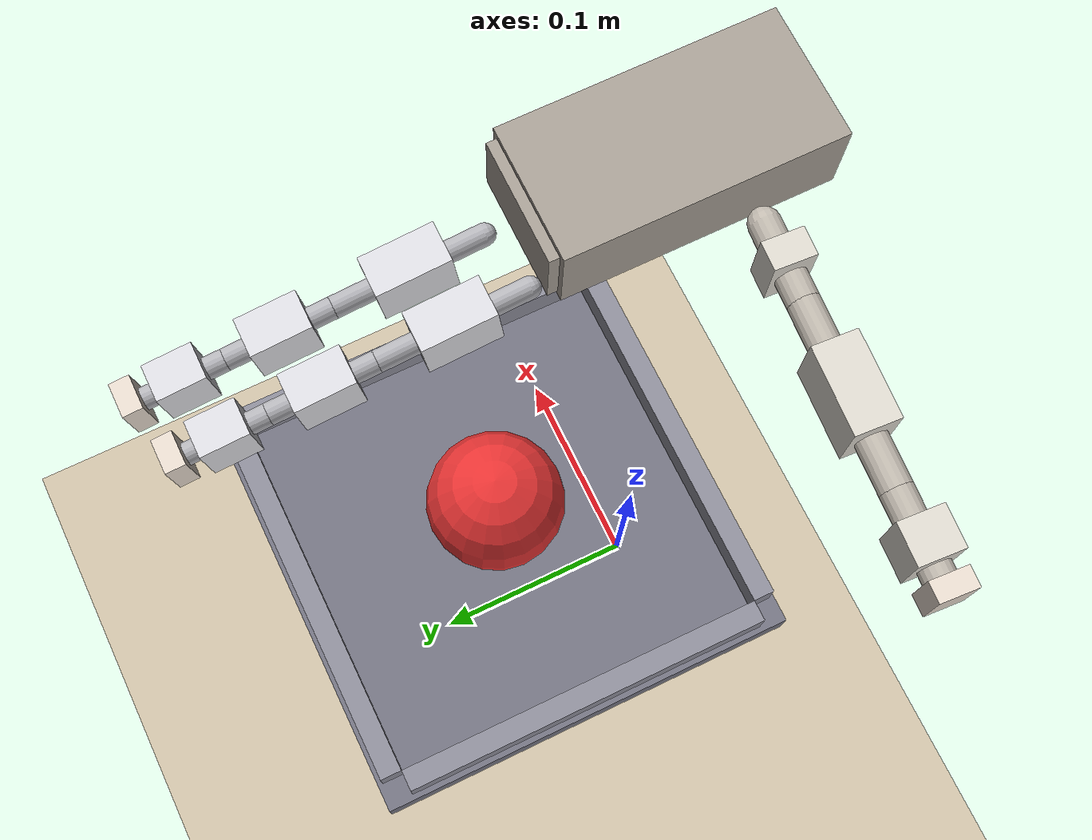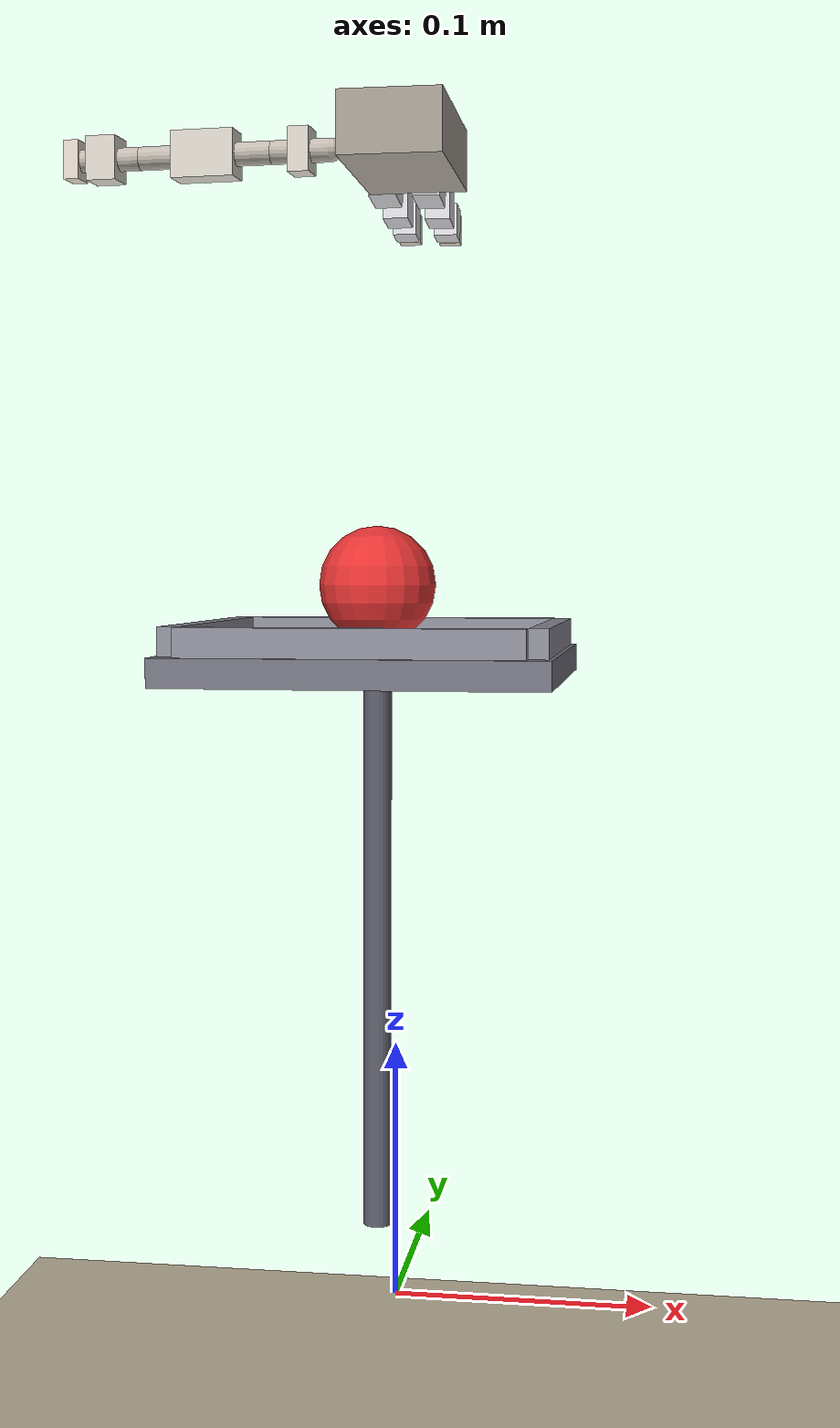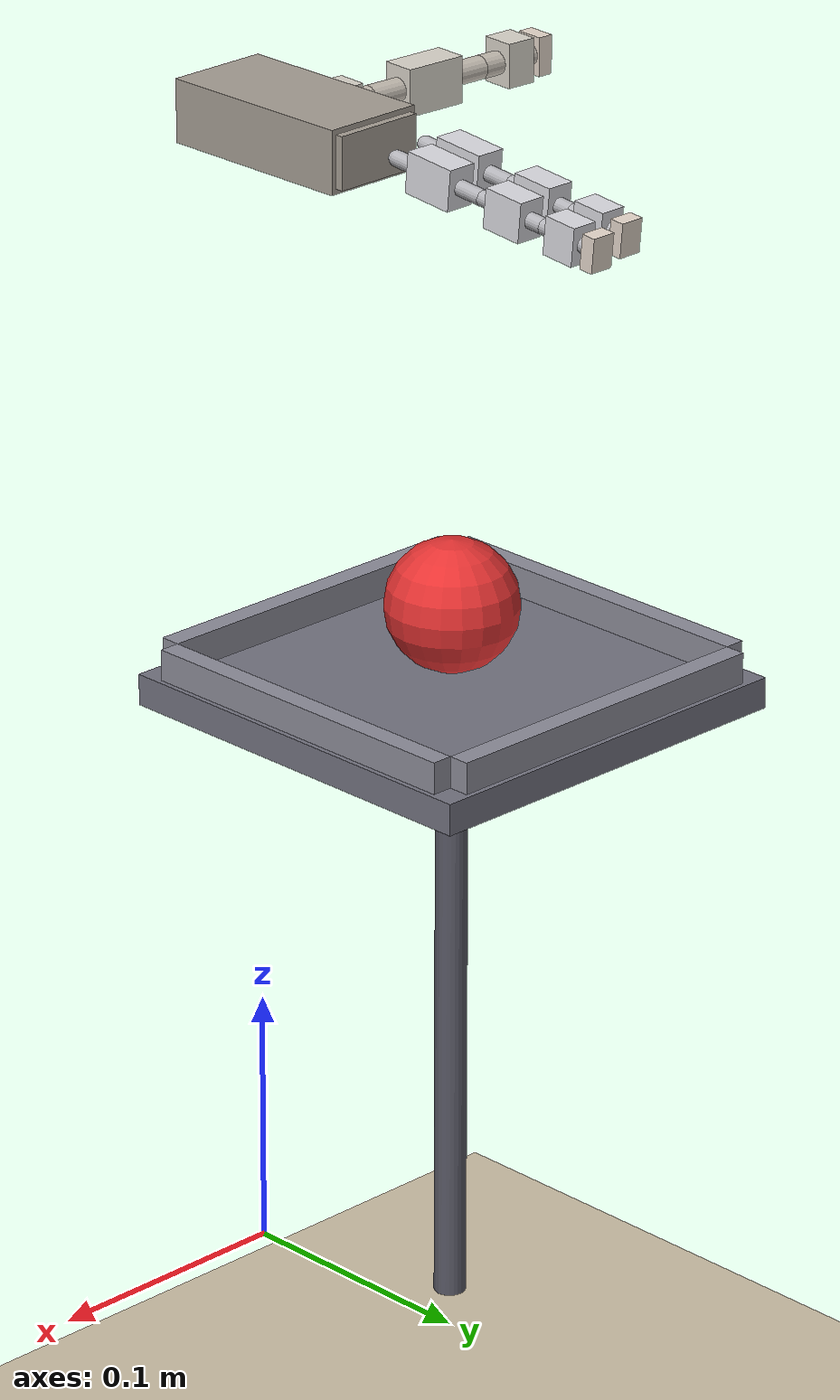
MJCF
<mujoco model="jodell_grasp_scene">

  <compiler angle="radian" eulerseq="xyz"/>
  <option timestep="0.002" gravity="0 0 -9.81" integrator="implicit"/>

  <!-- 引入机器人本体 -->
  <include file="jack_hand_3f_robot.xml"/>

  <!-- ==================== 场景资产 ==================== -->
  <asset>
    <texture name="grid" type="2d" builtin="checker" width="512" height="512"
             rgb1="0.3 0.3 0.35" rgb2="0.35 0.35 0.4"/>
    <material name="grid_mat" texture="grid" texrepeat="8 8"/>
  </asset>

  <!-- ==================== 场景物体 ==================== -->
  <worldbody>
    <!-- 地面 -->
    <geom name="floor" type="plane" size="0.5 0.5 0.01"
          material="grid_mat" pos="0 0 -0.1"/>

    <!-- 灯光 -->
    <light pos="0.3 0.3 0.5" dir="-0.3 -0.3 -0.5" diffuse="0.8 0.8 0.8"/>
    <light pos="-0.3 0.3 0.5" dir="0.3 -0.3 -0.5" diffuse="0.4 0.4 0.4"/>

    <!-- 物体放置台 -->
    <geom name="table_top" type="box" size="0.08 0.08 0.006"
          pos="-0.02 0.08 0.244" rgba="0.45 0.45 0.5 1"
          friction="1.0 0.005 0.001"/>

    <geom name="tray_wall_px" type="box" size="0.004 0.070 0.006"
          pos="0.054 0.08 0.256" rgba="0.55 0.55 0.60 0.9"
          friction="1.0 0.005 0.001"/>
    <geom name="tray_wall_nx" type="box" size="0.004 0.070 0.006"
          pos="-0.094 0.08 0.256" rgba="0.55 0.55 0.60 0.9"
          friction="1.0 0.005 0.001"/>
    <geom name="tray_wall_py" type="box" size="0.070 0.004 0.006"
          pos="-0.02 0.154 0.256" rgba="0.55 0.55 0.60 0.9"
          friction="1.0 0.005 0.001"/>
    <geom name="tray_wall_ny" type="box" size="0.070 0.004 0.006"
          pos="-0.02 0.006 0.256" rgba="0.55 0.55 0.60 0.9"
          friction="1.0 0.005 0.001"/>
    <geom name="table_leg" type="cylinder" size="0.006 0.12"
          pos="-0.02 0.08 0.12" rgba="0.35 0.35 0.4 1"/>

    <!-- 抓取目标物体 -->
    <body name="target_object" pos="-0.02 0.08 0.278">
      <freejoint name="obj_free"/>
      <inertial pos="0 0 0" mass="0.05"
                diaginertia="0.000005 0.000005 0.000005"/>
      <geom name="obj_geom" type="sphere" size="0.025" mass="0.05"
            rgba="0.9 0.2 0.2 1" friction="1.0 0.005 0.001"
            condim="4"/>
    </body>
  </worldbody>

</mujoco>

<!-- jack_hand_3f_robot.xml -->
<mujoco model="jodell_jack_hand_3f_robot">

  <!-- ==================== 默认参数 ==================== -->
  <default>
    <joint damping="0.01" armature="0.001"/>
    <geom rgba="0.8 0.75 0.65 1" friction="1.0 0.005 0.001"/>

    <default class="finger_link">
      <geom type="capsule" rgba="0.7 0.7 0.72 1" size="0.003"/>
    </default>

    <default class="thumb_link">
      <geom type="capsule" rgba="0.75 0.72 0.68 1" size="0.0045"/>
    </default>

    <default class="finger_joint">
      <joint damping="0.005" armature="0.0005" limited="true"/>
    </default>

    <default class="thumb_joint">
      <joint damping="0.008" armature="0.0008" limited="true"/>
    </default>

    <default class="fingertip">
      <geom type="sphere" size="0.004" rgba="0.9 0.85 0.8 1"
            friction="2.0 0.01 0.005" condim="4"/>
    </default>
  </default>

  <!-- ==================== 世界体 (手腕 + 手掌 + 手指) ==================== -->
  <worldbody>
    <body name="wrist_base" pos="0 0 0.45">
      <inertial pos="0 0 0" mass="0.05"
                diaginertia="0.00001 0.00001 0.00001"/>
      <joint name="wrist_x" type="slide" axis="1 0 0" range="-0.15 0.15"
             damping="2" limited="true"/>
      <joint name="wrist_y" type="slide" axis="0 1 0" range="-0.15 0.15"
             damping="2" limited="true"/>
      <joint name="wrist_z" type="slide" axis="0 0 1" range="-0.15 0.15"
             damping="2" limited="true"/>
      <joint name="wrist_rx" type="hinge" axis="1 0 0" range="-1.5708 1.5708"
             damping="0.5" limited="true"/>
      <joint name="wrist_ry" type="hinge" axis="0 1 0" range="-1.5708 1.5708"
             damping="0.5" limited="true"/>
      <joint name="wrist_rz" type="hinge" axis="0 0 1" range="-1.5708 1.5708"
             damping="0.5" limited="true"/>

      <!-- 手掌基座 (三指窄版, 绕X轴-90 deg 掌心朝下) -->
      <body name="palm" pos="0 0 0" euler="-1.5708 0 0">
        <inertial pos="0 0 0" mass="0.10"
                  diaginertia="0.00003 0.00005 0.00002"/>
        <geom name="palm_body" type="box" size="0.02 0.012 0.04"
              pos="0 0 0.02" rgba="0.65 0.62 0.58 1"/>
        <geom name="palm_top" type="box" size="0.018 0.010 0.005"
              pos="0 0 0.058" rgba="0.65 0.62 0.58 1"/>

        <!-- 掌心相机 -->
        <camera name="palm_cam" pos="0 0.015 0.04" euler="0 0 0" fovy="60"/>

        <!-- ==================== 拇指 (Thumb) - 4 DOF ==================== -->
        <body name="thumb_base" pos="-0.026 0.005 0.005"
              euler="0 -1.5708 0">
          <inertial pos="0 0 0" mass="0.002"
                    diaginertia="0.0000001 0.0000001 0.0000001"/>
          <joint name="thumb_q1" class="thumb_joint" type="hinge"
                 axis="1 0 0" range="-1.6580 0" ref="0"/>

          <body name="thumb_q2_frame" pos="0 0 0" euler="0 0 3.14159265">
            <inertial pos="0 0 0" mass="0.002"
                      diaginertia="0.0000001 0.0000001 0.0000001"/>
            <joint name="thumb_q2" class="thumb_joint" type="hinge"
                   axis="0 0 1" range="-0.9599 0" ref="0"/>

            <body name="thumb_link_OM" pos="0 0 0" euler="0 -0.0637 0">
              <inertial pos="0 0 0.01178" mass="0.008"
                        diaginertia="0.000001 0.000001 0.0000002"/>
              <geom name="thumb_OM" class="thumb_link"
                    fromto="0 0 0  0 0 0.02356"/>
              <geom name="thumb_pad_OM" type="box" size="0.0060 0.0085 0.0042"
                    pos="0 0 0.01178" rgba="0.86 0.84 0.80 1"
                    friction="2.2 0.01 0.005" condim="4"/>

              <body name="thumb_link_MN" pos="0 0 0.02356">
                <joint name="thumb_q3" class="thumb_joint" type="hinge"
                       axis="0 1 0" range="-1.5010 0" ref="-0.1434"/>
                <inertial pos="0 0 0.02658" mass="0.012"
                          diaginertia="0.000003 0.000003 0.0000003"/>
                <geom name="thumb_MN" class="thumb_link"
                      fromto="0 0 0  0 0 0.05317"/>
                <geom name="thumb_pad_MN" type="box" size="0.0065 0.0090 0.0125"
                      pos="0 0 0.02658" rgba="0.86 0.84 0.80 1"
                      friction="2.2 0.01 0.005" condim="4"/>

                <body name="thumb_link_NT" pos="0 0 0.05317">
                  <joint name="thumb_q4" class="thumb_joint" type="hinge"
                         axis="0 1 0" range="-1.2217 0" ref="0.2919"/>
                  <inertial pos="0 0 0.01278" mass="0.006"
                            diaginertia="0.0000008 0.0000008 0.0000001"/>
                  <geom name="thumb_NT" class="thumb_link"
                        fromto="0 0 0  0 0 0.02557"/>
                  <geom name="thumb_pad_NT" type="box" size="0.0065 0.0085 0.0060"
                        pos="0 0 0.0145" rgba="0.86 0.84 0.80 1"
                        friction="2.2 0.01 0.005" condim="4"/>

                  <body name="thumb_tip" pos="0 0 0.02557">
                    <geom name="thumb_tip_geom" type="box" size="0.0055 0.0075 0.003"
                          pos="0 0 0.0015" rgba="0.90 0.85 0.80 1"
                          friction="2.2 0.01 0.005" condim="4"/>
                    <site name="thumb_tip_site" pos="0 0 0" size="0.002"/>
                  </body>
                </body>
              </body>
            </body>
          </body>
        </body>

        <!-- ==================== 食指 (Index) - 3 DOF + 耦合 ==================== -->
        <body name="index_base" pos="-0.018 0 0.068" euler="-0.0944 0 0">
          <inertial pos="0 0 0" mass="0.002"
                    diaginertia="0.0000001 0.0000001 0.0000001"/>
          <joint name="index_q1" class="finger_joint" type="hinge"
                 axis="1 0 0" range="-1.5708 0.2618" ref="0"/>

          <body name="index_q2_frame" pos="0 0 0">
            <inertial pos="0 0 0" mass="0.002"
                      diaginertia="0.0000001 0.0000001 0.0000001"/>
            <joint name="index_q2" class="finger_joint" type="hinge"
                   axis="0 1 0" range="-0.35 0.35" ref="0"/>

            <body name="index_link_PM" pos="0 0 0">
              <inertial pos="0 0 0.02119" mass="0.010"
                        diaginertia="0.000002 0.000002 0.0000003"/>
              <geom name="index_PM" class="finger_link"
                    fromto="0 0 0  0 0 0.04239"/>
              <geom name="index_pad_PM" type="box" size="0.0058 0.0078 0.0105"
                    pos="0 0 0.02119" rgba="0.86 0.86 0.88 1"
                    friction="2.0 0.01 0.005" condim="4"/>

              <body name="index_link_MN" pos="0 0 0.04239">
                <joint name="index_q3" class="finger_joint" type="hinge"
                       axis="1 0 0" range="-1.5708 0.2618" ref="0"/>
                <inertial pos="0 0 0.015" mass="0.006"
                          diaginertia="0.0000008 0.0000008 0.0000001"/>
                <geom name="index_MN" class="finger_link"
                      fromto="0 0 0  0 0 0.03"/>
                <geom name="index_pad_MN" type="box" size="0.0055 0.0075 0.0085"
                      pos="0 0 0.015" rgba="0.86 0.86 0.88 1"
                      friction="2.0 0.01 0.005" condim="4"/>

                <body name="index_link_NT" pos="0 0 0.03">
                  <joint name="index_q4" class="finger_joint" type="hinge"
                         axis="1 0 0" range="-1.5708 0.2618" ref="0"/>
                  <inertial pos="0 0 0.01208" mass="0.004"
                            diaginertia="0.0000004 0.0000004 0.00000005"/>
                  <geom name="index_NT" class="finger_link"
                        fromto="0 0 0  0 0 0.02416"/>
                  <geom name="index_pad_NT" type="box" size="0.0052 0.0072 0.0068"
                        pos="0 0 0.01208" rgba="0.86 0.86 0.88 1"
                        friction="2.0 0.01 0.005" condim="4"/>

                  <body name="index_tip" pos="0 0 0.02416">
                    <geom name="index_tip_geom" type="box" size="0.0048 0.0065 0.0028"
                          pos="0 0 0.0012" rgba="0.90 0.85 0.80 1"
                          friction="2.0 0.01 0.005" condim="4"/>
                    <site name="index_tip_site" pos="0 0 0" size="0.002"/>
                  </body>
                </body>
              </body>
            </body>
          </body>
        </body>

        <!-- ==================== 中指 (Middle) ==================== -->
        <body name="middle_base" pos="0.000 0 0.072" euler="-0.0944 0 0">
          <inertial pos="0 0 0" mass="0.002"
                    diaginertia="0.0000001 0.0000001 0.0000001"/>
          <joint name="middle_q1" class="finger_joint" type="hinge"
                 axis="1 0 0" range="-1.5708 0.2618" ref="0"/>
          <body name="middle_q2_frame" pos="0 0 0">
            <inertial pos="0 0 0" mass="0.002"
                      diaginertia="0.0000001 0.0000001 0.0000001"/>
            <joint name="middle_q2" class="finger_joint" type="hinge"
                   axis="0 1 0" range="-0.35 0.35" ref="0"/>
            <body name="middle_link_PM" pos="0 0 0">
              <inertial pos="0 0 0.02119" mass="0.010"
                        diaginertia="0.000002 0.000002 0.0000003"/>
              <geom name="middle_PM" class="finger_link"
                    fromto="0 0 0  0 0 0.04239"/>
              <geom name="middle_pad_PM" type="box" size="0.0058 0.0078 0.0105"
                    pos="0 0 0.02119" rgba="0.86 0.86 0.88 1"
                    friction="2.0 0.01 0.005" condim="4"/>
              <body name="middle_link_MN" pos="0 0 0.04239">
                <joint name="middle_q3" class="finger_joint" type="hinge"
                       axis="1 0 0" range="-1.5708 0.2618" ref="0"/>
                <inertial pos="0 0 0.015" mass="0.006"
                          diaginertia="0.0000008 0.0000008 0.0000001"/>
                <geom name="middle_MN" class="finger_link"
                      fromto="0 0 0  0 0 0.03"/>
                <geom name="middle_pad_MN" type="box" size="0.0055 0.0075 0.0085"
                      pos="0 0 0.015" rgba="0.86 0.86 0.88 1"
                      friction="2.0 0.01 0.005" condim="4"/>
                <body name="middle_link_NT" pos="0 0 0.03">
                  <joint name="middle_q4" class="finger_joint" type="hinge"
                         axis="1 0 0" range="-1.5708 0.2618" ref="0"/>
                  <inertial pos="0 0 0.01208" mass="0.004"
                            diaginertia="0.0000004 0.0000004 0.00000005"/>
                  <geom name="middle_NT" class="finger_link"
                        fromto="0 0 0  0 0 0.02416"/>
                  <geom name="middle_pad_NT" type="box" size="0.0052 0.0072 0.0068"
                        pos="0 0 0.01208" rgba="0.86 0.86 0.88 1"
                        friction="2.0 0.01 0.005" condim="4"/>
                  <body name="middle_tip" pos="0 0 0.02416">
                    <geom name="middle_tip_geom" type="box" size="0.0048 0.0065 0.0028"
                          pos="0 0 0.0012" rgba="0.90 0.85 0.80 1"
                          friction="2.0 0.01 0.005" condim="4"/>
                    <site name="middle_tip_site" pos="0 0 0" size="0.002"/>
                  </body>
                </body>
              </body>
            </body>
          </body>
        </body>

      </body><!-- end palm -->
    </body><!-- end wrist_base -->
  </worldbody>

  <!-- ==================== 等式约束 ==================== -->
  <equality>
    <joint name="index_q3q4_coupling" joint1="index_q4" joint2="index_q3"
           polycoef="-0.01462 1.27107 0.07658 0.05314 0.10674"/>
    <joint name="middle_q3q4_coupling" joint1="middle_q4" joint2="middle_q3"
           polycoef="-0.01462 1.27107 0.07658 0.05314 0.10674"/>
  </equality>

  <!-- ==================== 驱动器 ==================== -->
  <actuator>
    <position name="wrist_act_x" joint="wrist_x" kp="2000" ctrlrange="-0.15 0.15"/>
    <position name="wrist_act_y" joint="wrist_y" kp="2000" ctrlrange="-0.15 0.15"/>
    <position name="wrist_act_z" joint="wrist_z" kp="2000" ctrlrange="-0.15 0.15"/>
    <position name="wrist_act_rx" joint="wrist_rx" kp="200" ctrlrange="-1.5708 1.5708"/>
    <position name="wrist_act_ry" joint="wrist_ry" kp="200" ctrlrange="-1.5708 1.5708"/>
    <position name="wrist_act_rz" joint="wrist_rz" kp="200" ctrlrange="-1.5708 1.5708"/>

    <position name="thumb_act_q1" joint="thumb_q1" kp="5.0" ctrlrange="-1.658 0"/>
    <position name="thumb_act_q2" joint="thumb_q2" kp="5.0" ctrlrange="-0.960 0"/>
    <position name="thumb_act_q3" joint="thumb_q3" kp="4.0" ctrlrange="-1.501 0"/>
    <position name="thumb_act_q4" joint="thumb_q4" kp="3.0" ctrlrange="-1.222 0"/>

    <position name="index_act_q1" joint="index_q1" kp="5.0" ctrlrange="-1.571 0.262"/>
    <position name="index_act_q2" joint="index_q2" kp="4.0" ctrlrange="-0.35 0.35"/>
    <position name="index_act_q3" joint="index_q3" kp="4.0" ctrlrange="-1.571 0.262"/>

    <position name="middle_act_q1" joint="middle_q1" kp="5.0" ctrlrange="-1.571 0.262"/>
    <position name="middle_act_q2" joint="middle_q2" kp="4.0" ctrlrange="-0.35 0.35"/>
    <position name="middle_act_q3" joint="middle_q3" kp="4.0" ctrlrange="-1.571 0.262"/>
  </actuator>

  <!-- ==================== 传感器 ==================== -->
  <sensor>
    <framepos name="thumb_tip_pos" objtype="site" objname="thumb_tip_site"/>
    <framepos name="index_tip_pos" objtype="site" objname="index_tip_site"/>
    <framepos name="middle_tip_pos" objtype="site" objname="middle_tip_site"/>

    <touch name="thumb_touch" site="thumb_tip_site"/>
    <touch name="index_touch" site="index_tip_site"/>
    <touch name="middle_touch" site="middle_tip_site"/>

    <jointpos name="wrist_x_pos" joint="wrist_x"/>
    <jointpos name="wrist_y_pos" joint="wrist_y"/>
    <jointpos name="wrist_z_pos" joint="wrist_z"/>
    <jointpos name="wrist_rx_pos" joint="wrist_rx"/>
    <jointpos name="wrist_ry_pos" joint="wrist_ry"/>
    <jointpos name="wrist_rz_pos" joint="wrist_rz"/>

    <jointpos name="thumb_q1_pos" joint="thumb_q1"/>
    <jointpos name="thumb_q2_pos" joint="thumb_q2"/>
    <jointpos name="thumb_q3_pos" joint="thumb_q3"/>
    <jointpos name="thumb_q4_pos" joint="thumb_q4"/>
    <jointpos name="index_q1_pos" joint="index_q1"/>
    <jointpos name="index_q2_pos" joint="index_q2"/>
    <jointpos name="index_q3_pos" joint="index_q3"/>
    <jointpos name="index_q4_pos" joint="index_q4"/>
    <jointpos name="middle_q1_pos" joint="middle_q1"/>
    <jointpos name="middle_q2_pos" joint="middle_q2"/>
    <jointpos name="middle_q3_pos" joint="middle_q3"/>
    <jointpos name="middle_q4_pos" joint="middle_q4"/>
  </sensor>

</mujoco>
